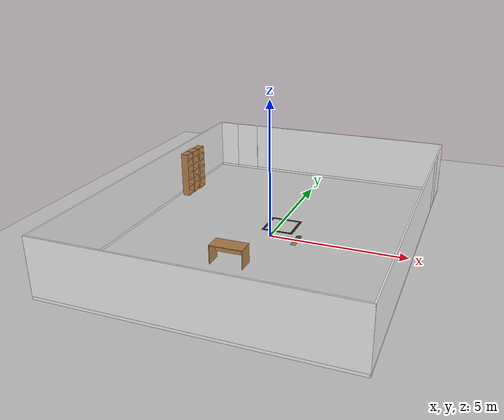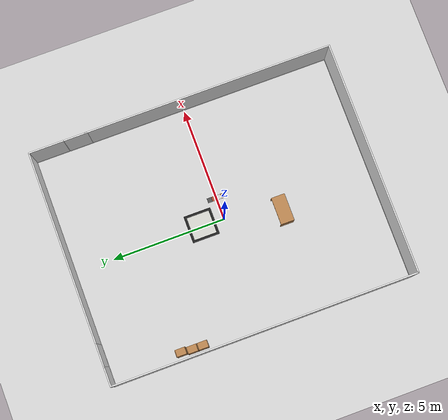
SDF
<sdf version="1.6">
 <world name="megaweb">
  <physics name="default_physics" default="0" type="ode">
   <max_step_size>0.001</max_step_size>
   <real_time_factor>1</real_time_factor>
   <real_time_update_rate>1000</real_time_update_rate>
  </physics>
  <scene><ambient>1 1 1 1</ambient><background>0.7 0.7 0.7 1</background><shadows>0</shadows></scene>
  <model name="ground_plane">
   <static>1</static>
   <link name="link">
    <collision name="collision">
     <geometry><plane><normal>0 0 1</normal><size>100 100</size></plane></geometry>
     <surface><friction><ode><mu>100</mu><mu2>50</mu2></ode></friction></surface>
    </collision>
    <visual name="visual">
     <cast_shadows>0</cast_shadows>
     <geometry><plane><normal>0 0 1</normal><size>100 100</size></plane></geometry>
     <material>
      <script><uri>file://media/materials/scripts/gazebo.material</uri><name>Gazebo/Grey</name></script>
     </material>
    </visual>
   </link>
  </model>
  <light name="floorlight1" type="spot">
   <pose>-3 -3 4 0 -0 0</pose>
   <diffuse>0.8 0.8 0.8 1</diffuse>
   <specular>0.2 0.2 0.2 1</specular>
   <attenuation>
    <range>10</range>
    <constant>0.9</constant>
    <linear>0.2</linear>
    <quadratic>0.001</quadratic>
   </attenuation>
   <spot><inner_angle>0.1</inner_angle><outer_angle>3.14</outer_angle><falloff>0.01</falloff></spot>
   <direction>0 0 -1</direction>
  </light>
  <light name="floorlight2" type="spot">
   <pose>-6 -3 4 0 -0 0</pose>
   <diffuse>0.8 0.8 0.8 1</diffuse>
   <specular>0.2 0.2 0.2 1</specular>
   <attenuation>
    <range>10</range>
    <constant>0.9</constant>
    <linear>0.2</linear>
    <quadratic>0.001</quadratic>
   </attenuation>
   <spot><inner_angle>0.1</inner_angle><outer_angle>3.14</outer_angle><falloff>0.01</falloff></spot>
   <direction>0 0 -1</direction>
  </light>
  <light name="floorlight3" type="spot">
   <pose>-3 -6 4 0 -0 0</pose>
   <diffuse>0.8 0.8 0.8 1</diffuse>
   <specular>0.2 0.2 0.2 1</specular>
   <attenuation>
    <range>10</range>
    <constant>0.9</constant>
    <linear>0.2</linear>
    <quadratic>0.001</quadratic>
   </attenuation>
   <spot><inner_angle>0.1</inner_angle><outer_angle>3.14</outer_angle><falloff>0.01</falloff></spot>
   <direction>0 0 -1</direction>
  </light>
  <light name="floorlight4" type="spot">
   <pose>-6 -6 4 0 -0 0</pose>
   <diffuse>0.8 0.8 0.8 1</diffuse>
   <specular>0.2 0.2 0.2 1</specular>
   <attenuation>
    <range>10</range>
    <constant>0.9</constant>
    <linear>0.2</linear>
    <quadratic>0.001</quadratic>
   </attenuation>
   <spot><inner_angle>0.1</inner_angle><outer_angle>3.14</outer_angle><falloff>0.01</falloff></spot>
   <direction>0 0 -1</direction>
  </light>
  <gravity>0 0 -9.8</gravity>
  <magnetic_field>6e-06 2.3e-05 -4.2e-05</magnetic_field>
  <atmosphere type="adiabatic"/>
  <spherical_coordinates>
   <surface_model>EARTH_WGS84</surface_model>
   <latitude_deg>0</latitude_deg>
   <longitude_deg>0</longitude_deg>
   <elevation>0</elevation>
   <heading_deg>0</heading_deg>
  </spherical_coordinates>
  <model name="full_outside_wall">
   <link name="link">
    <inertial>
     <mass>50</mass>
     <inertia><ixx>1</ixx><ixy>0</ixy><ixz>0</ixz><iyy>1</iyy><iyz>0</iyz><izz>1</izz></inertia>
    </inertial>
    <visual name="x00_13y00_bottom_frame">
     <pose>5.0375 -0.0275 0.05 0 -0 0</pose>
     <geometry><box><size>10.185 0.055 0.1</size></box></geometry>
     <material>
      <script><uri>model://base_materials/color/scripts</uri><name>hsr_color/white</name></script>
     </material>
    </visual>
    <collision name="x00_13y00_collision_bottom_frame">
     <pose>5.0375 -0.0275 0.05 0 -0 0</pose>
     <geometry><box><size>10.185 0.055 0.1</size></box></geometry>
    </collision>
    <visual name="wall_x00_13y00">
     <pose>5.0375 -0.0275 1.095 0 -0 0</pose>
     <geometry><box><size>10.185 0.055 1.99</size></box></geometry>
     <material>
      <script>
       <uri>model://base_materials/wall/scripts</uri>
       <uri>model://base_materials/wall/textures</uri>
       <name>wall/white_noise</name>
      </script>
     </material>
    </visual>
    <collision name="wall_x00_13y00">
     <pose>5.0375 -0.002 1.095 0 -0 0</pose>
     <geometry><box><size>10.08 0.055 1.99</size></box></geometry>
    </collision>
    <visual name="x00y00_15_bottom_frame">
     <pose>-0.0275 6.59 0.05 0 -0 0</pose>
     <geometry><box><size>0.055 13.29 0.1</size></box></geometry>
     <material>
      <script><uri>model://base_materials/color/scripts</uri><name>hsr_color/white</name></script>
     </material>
    </visual>
    <collision name="x00y00_15_collision_bottom_frame">
     <pose>-0.0275 6.59 0.05 0 -0 0</pose>
     <geometry><box><size>0.055 13.29 0.1</size></box></geometry>
    </collision>
    <visual name="wall_x00y00_15">
     <pose>-0.0275 6.59 1.095 0 -0 0</pose>
     <geometry><box><size>0.055 13.29 1.99</size></box></geometry>
     <material>
      <script>
       <uri>model://base_materials/wall/scripts</uri>
       <uri>model://base_materials/wall/textures</uri>
       <name>wall/white_noise</name>
      </script>
     </material>
    </visual>
    <collision name="wall_x00y00_x00y15">
     <pose>-0.002 6.59 1.095 0 -0 0</pose>
     <geometry><box><size>0.002 13.29 1.99</size></box></geometry>
    </collision>
    <visual name="x13y00_12_bottom_frame">
     <pose>10.1025 5.3725 0.05 0 -0 0</pose>
     <geometry><box><size>0.055 10.855 0.1</size></box></geometry>
     <material>
      <script><uri>model://base_materials/color/scripts</uri><name>hsr_color/white</name></script>
     </material>
    </visual>
    <collision name="x13y00_12_collision_bottom_frame">
     <pose>10.1025 5.3725 0.05 0 -0 0</pose>
     <geometry><box><size>0.055 10.855 0.1</size></box></geometry>
    </collision>
    <visual name="wall_x13y00_12">
     <pose>10.1025 5.3725 1.095 0 -0 0</pose>
     <geometry><box><size>0.055 10.855 1.99</size></box></geometry>
     <material>
      <script>
       <uri>model://base_materials/wall/scripts</uri>
       <uri>model://base_materials/wall/textures</uri>
       <name>wall/white_noise</name>
      </script>
     </material>
    </visual>
    <collision name="wall_x13y00_12">
     <pose>10.1025 5.3725 1.095 0 -0 0</pose>
     <geometry><box><size>0.055 10.855 1.99</size></box></geometry>
    </collision>
    <visual name="x13y14_16_bottom_frame">
     <pose>10.1025 12.4675 0.05 0 -0 0</pose>
     <geometry><box><size>0.055 1.535 0.1</size></box></geometry>
     <material>
      <script><uri>model://base_materials/color/scripts</uri><name>hsr_color/white</name></script>
     </material>
    </visual>
    <collision name="x13y14_16_collision_bottom_frame">
     <pose>10.1025 12.4675 0.05 0 -0 0</pose>
     <geometry><box><size>0.055 1.535 0.1</size></box></geometry>
    </collision>
    <visual name="wall_x13y14_x13y16">
     <pose>10.1025 12.4675 1.095 0 -0 0</pose>
     <geometry><box><size>0.055 1.535 1.99</size></box></geometry>
     <material>
      <script>
       <uri>model://base_materials/wall/scripts</uri>
       <uri>model://base_materials/wall/textures</uri>
       <name>wall/white_noise</name>
      </script>
     </material>
    </visual>
    <collision name="wall_x13y14_x13y16">
     <pose>10.1025 12.4675 1.095 0 -0 0</pose>
     <geometry><box><size>0.055 1.535 1.99</size></box></geometry>
    </collision>
    <visual name="x00_01y16_bottom_frame">
     <pose>0.4225 13.2075 0.05 0 -0 0</pose>
     <geometry><box><size>0.955 0.055 0.1</size></box></geometry>
     <material>
      <script><uri>model://base_materials/color/scripts</uri><name>hsr_color/white</name></script>
     </material>
    </visual>
    <collision name="x00_01y16_collision_bottom_frame">
     <pose>0.4225 13.2075 0.05 0 -0 0</pose>
     <geometry><box><size>0.955 0.055 0.1</size></box></geometry>
    </collision>
    <visual name="wall_x00_01y16">
     <pose>0.4225 13.2075 1.095 0 -0 0</pose>
     <geometry><box><size>0.955 0.055 1.99</size></box></geometry>
     <material>
      <script>
       <uri>model://base_materials/wall/scripts</uri>
       <uri>model://base_materials/wall/textures</uri>
       <name>wall/white_noise</name>
      </script>
     </material>
    </visual>
    <collision name="wall_x00_x01y16">
     <pose>0.4225 13.2075 1.095 0 -0 0</pose>
     <geometry><box><size>0.955 0.055 1.99</size></box></geometry>
    </collision>
    <visual name="x03_13y16_bottom_frame">
     <pose>5.965 13.2075 0.05 0 -0 0</pose>
     <geometry><box><size>8.33 0.05 0.1</size></box></geometry>
     <material>
      <script><uri>model://base_materials/color/scripts</uri><name>hsr_color/white</name></script>
     </material>
    </visual>
    <collision name="x03_13y16_collision_bottom_frame">
     <pose>5.965 13.2075 0.05 0 -0 0</pose>
     <geometry><box><size>8.33 0.05 0.1</size></box></geometry>
    </collision>
    <visual name="wall_x03_13y16">
     <pose>5.965 13.2075 1.095 0 -0 0</pose>
     <geometry><box><size>8.33 0.055 1.99</size></box></geometry>
     <material>
      <script>
       <uri>model://base_materials/wall/scripts</uri>
       <uri>model://base_materials/wall/textures</uri>
       <name>wall/white_noise</name>
      </script>
     </material>
    </visual>
    <collision name="wall_x03_13y16">
     <pose>5.965 13.2075 1.095 0 -0 0</pose>
     <geometry><box><size>8.33 0.055 1.99</size></box></geometry>
    </collision>
    <velocity_decay><linear>0</linear><angular>0</angular></velocity_decay>
   </link>
   <static>1</static>
   <pose>-5 -6.5 0 0 -0 0</pose>
  </model>
  <model name="full_wall_55_900_2090">
   <link name="link">
    <inertial>
     <mass>50</mass>
     <inertia><ixx>1</ixx><ixy>0</ixy><ixz>0</ixz><iyy>1</iyy><iyz>0</iyz><izz>1</izz></inertia>
    </inertial>
    <visual name="bottom_frame">
     <pose>0 0 0.05 0 -0 0</pose>
     <geometry><box><size>0.055 1.04 0.1</size></box></geometry>
     <material>
      <script><uri>model://base_materials/color/scripts</uri><name>hsr_color/white</name></script>
     </material>
    </visual>
    <collision name="collision_bottom_frame">
     <pose>0 0 0.05 0 -0 0</pose>
     <geometry><box><size>0.055 1.04 0.1</size></box></geometry>
    </collision>
    <visual name="wall">
     <pose>0 0 1.095 0 -0 0</pose>
     <geometry><box><size>0.055 1.04 1.99</size></box></geometry>
     <material>
      <script>
       <uri>model://base_materials/wall/scripts</uri>
       <uri>model://base_materials/wall/textures</uri>
       <name>wall/white_noise</name>
      </script>
     </material>
    </visual>
    <collision name="collision_wall">
     <pose>0 0 1.095 0 -0 0</pose>
     <geometry><box><size>0.055 1.04 1.99</size></box></geometry>
    </collision>
    <velocity_decay><linear>0</linear><angular>0</angular></velocity_decay>
   </link>
   <static>1</static>
   <pose>5.1 4.67156 0 0 -0 0</pose>
  </model>
  <model name="full_wall_55_900_2090_0">
   <link name="link">
    <inertial>
     <mass>50</mass>
     <inertia><ixx>1</ixx><ixy>0</ixy><ixz>0</ixz><iyy>1</iyy><iyz>0</iyz><izz>1</izz></inertia>
    </inertial>
    <visual name="bottom_frame">
     <pose>0 0 0.05 0 -0 0</pose>
     <geometry><box><size>0.055 1.04 0.1</size></box></geometry>
     <material>
      <script><uri>model://base_materials/color/scripts</uri><name>hsr_color/white</name></script>
     </material>
    </visual>
    <collision name="collision_bottom_frame">
     <pose>0 0 0.05 0 -0 0</pose>
     <geometry><box><size>0.055 1.04 0.1</size></box></geometry>
    </collision>
    <visual name="wall">
     <pose>0 0 1.095 0 -0 0</pose>
     <geometry><box><size>0.055 1.04 1.99</size></box></geometry>
     <material>
      <script>
       <uri>model://base_materials/wall/scripts</uri>
       <uri>model://base_materials/wall/textures</uri>
       <name>wall/white_noise</name>
      </script>
     </material>
    </visual>
    <collision name="collision_wall">
     <pose>0 0 1.095 0 -0 0</pose>
     <geometry><box><size>0.055 1.04 1.99</size></box></geometry>
    </collision>
    <velocity_decay><linear>0</linear><angular>0</angular></velocity_decay>
   </link>
   <static>1</static>
   <pose>-3.72484 6.70714 0 0 -0 1.57</pose>
  </model>
  <model name="high_shelf">
   <link name="link">
    <inertial>
     <mass>5</mass>
     <inertia><ixx>1</ixx><ixy>0</ixy><ixz>0</ixz><iyy>1</iyy><iyz>0</iyz><izz>1</izz></inertia>
    </inertial>
    <visual name="left_board">
     <pose>-0.1475 0.009 0.898 0 -0 0</pose>
     <geometry><box><size>0.295 0.018 1.796</size></box></geometry>
     <material>
      <script>
       <uri>model://base_materials/wood/scripts</uri>
       <uri>model://base_materials/wood/textures</uri>
       <name>base_materials/light_wood</name>
      </script>
     </material>
    </visual>
    <collision name="collision_left_board">
     <pose>-0.1475 0.009 0.898 0 -0 0</pose>
     <geometry><box><size>0.295 0.018 1.796</size></box></geometry>
    </collision>
    <visual name="right_board">
     <pose>-0.1475 0.441 0.898 0 -0 0</pose>
     <geometry><box><size>0.295 0.018 1.796</size></box></geometry>
     <material>
      <script>
       <uri>model://base_materials/wood/scripts</uri>
       <uri>model://base_materials/wood/textures</uri>
       <name>base_materials/light_wood</name>
      </script>
     </material>
    </visual>
    <collision name="collision_right_board">
     <pose>-0.1475 0.441 0.898 0 -0 0</pose>
     <geometry><box><size>0.295 0.018 1.796</size></box></geometry>
    </collision>
    <visual name="top_board">
     <pose>-0.1475 0.225 1.7825 0 -0 0</pose>
     <geometry><box><size>0.295 0.414 0.035</size></box></geometry>
     <material>
      <script>
       <uri>model://base_materials/wood/scripts</uri>
       <uri>model://base_materials/wood/textures</uri>
       <name>base_materials/light_wood</name>
      </script>
     </material>
    </visual>
    <collision name="collision_top_board">
     <pose>-0.1475 0.225 1.7825 0 -0 0</pose>
     <geometry><box><size>0.295 0.414 0.035</size></box></geometry>
    </collision>
    <visual name="1st_shelf">
     <pose>-0.162 0.225 1.51 0 -0 0</pose>
     <geometry><box><size>0.266 0.414 0.018</size></box></geometry>
     <material>
      <script>
       <uri>model://base_materials/wood/scripts</uri>
       <uri>model://base_materials/wood/textures</uri>
       <name>base_materials/light_wood</name>
      </script>
     </material>
    </visual>
    <collision name="collision_1st_shelf">
     <pose>-0.162 0.225 1.51 0 -0 0</pose>
     <geometry><box><size>0.266 0.414 0.018</size></box></geometry>
    </collision>
    <visual name="2nd_shelf">
     <pose>-0.162 0.225 1.22 0 -0 0</pose>
     <geometry><box><size>0.266 0.414 0.018</size></box></geometry>
     <material>
      <script>
       <uri>model://base_materials/wood/scripts</uri>
       <uri>model://base_materials/wood/textures</uri>
       <name>base_materials/light_wood</name>
      </script>
     </material>
    </visual>
    <collision name="collision_2nd_shelf">
     <pose>-0.162 0.225 1.22 0 -0 0</pose>
     <geometry><box><size>0.266 0.414 0.018</size></box></geometry>
    </collision>
    <visual name="3rd_shelf">
     <pose>-0.162 0.225 0.93 0 -0 0</pose>
     <geometry><box><size>0.266 0.414 0.018</size></box></geometry>
     <material>
      <script>
       <uri>model://base_materials/wood/scripts</uri>
       <uri>model://base_materials/wood/textures</uri>
       <name>base_materials/light_wood</name>
      </script>
     </material>
    </visual>
    <collision name="collision_3rd_shelf">
     <pose>-0.162 0.225 0.93 0 -0 0</pose>
     <geometry><box><size>0.266 0.414 0.018</size></box></geometry>
    </collision>
    <visual name="4th_shelf">
     <pose>-0.162 0.225 0.65 0 -0 0</pose>
     <geometry><box><size>0.266 0.414 0.018</size></box></geometry>
     <material>
      <script>
       <uri>model://base_materials/wood/scripts</uri>
       <uri>model://base_materials/wood/textures</uri>
       <name>base_materials/light_wood</name>
      </script>
     </material>
    </visual>
    <collision name="collision_4th_shelf">
     <pose>-0.162 0.225 0.65 0 -0 0</pose>
     <geometry><box><size>0.266 0.414 0.018</size></box></geometry>
    </collision>
    <visual name="5th_shelf">
     <pose>-0.162 0.225 0.36 0 -0 0</pose>
     <geometry><box><size>0.266 0.414 0.018</size></box></geometry>
     <material>
      <script>
       <uri>model://base_materials/wood/scripts</uri>
       <uri>model://base_materials/wood/textures</uri>
       <name>base_materials/light_wood</name>
      </script>
     </material>
    </visual>
    <collision name="collision_5th_shelf">
     <pose>-0.162 0.225 0.36 0 -0 0</pose>
     <geometry><box><size>0.266 0.414 0.018</size></box></geometry>
    </collision>
    <visual name="bottom_board">
     <pose>-0.1475 0.225 0.035 0 -0 0</pose>
     <geometry><box><size>0.295 0.414 0.07</size></box></geometry>
     <material>
      <script>
       <uri>model://base_materials/wood/scripts</uri>
       <uri>model://base_materials/wood/textures</uri>
       <name>base_materials/light_wood</name>
      </script>
     </material>
    </visual>
    <collision name="collision_bottom_board">
     <pose>-0.1475 0.225 0.035 0 -0 0</pose>
     <geometry><box><size>0.295 0.414 0.07</size></box></geometry>
    </collision>
    <visual name="back_board">
     <pose>-0.286 0.225 0.898 0 -0 0</pose>
     <geometry><box><size>0.018 0.414 1.796</size></box></geometry>
     <material>
      <script>
       <uri>model://base_materials/wood/scripts</uri>
       <uri>model://base_materials/wood/textures</uri>
       <name>base_materials/light_wood</name>
      </script>
     </material>
    </visual>
    <collision name="collision_back_board">
     <pose>-0.286 0.225 0.898 0 -0 0</pose>
     <geometry><box><size>0.018 0.414 1.796</size></box></geometry>
    </collision>
    <velocity_decay><linear>0</linear><angular>0</angular></velocity_decay>
   </link>
   <static>1</static>
   <pose>-4.58727 2.46216 0 0 -0 0</pose>
  </model>
  <model name="high_shelf_0">
   <link name="link">
    <inertial>
     <mass>5</mass>
     <inertia><ixx>1</ixx><ixy>0</ixy><ixz>0</ixz><iyy>1</iyy><iyz>0</iyz><izz>1</izz></inertia>
    </inertial>
    <visual name="left_board">
     <pose>-0.1475 0.009 0.898 0 -0 0</pose>
     <geometry><box><size>0.295 0.018 1.796</size></box></geometry>
     <material>
      <script>
       <uri>model://base_materials/wood/scripts</uri>
       <uri>model://base_materials/wood/textures</uri>
       <name>base_materials/light_wood</name>
      </script>
     </material>
    </visual>
    <collision name="collision_left_board">
     <pose>-0.1475 0.009 0.898 0 -0 0</pose>
     <geometry><box><size>0.295 0.018 1.796</size></box></geometry>
    </collision>
    <visual name="right_board">
     <pose>-0.1475 0.441 0.898 0 -0 0</pose>
     <geometry><box><size>0.295 0.018 1.796</size></box></geometry>
     <material>
      <script>
       <uri>model://base_materials/wood/scripts</uri>
       <uri>model://base_materials/wood/textures</uri>
       <name>base_materials/light_wood</name>
      </script>
     </material>
    </visual>
    <collision name="collision_right_board">
     <pose>-0.1475 0.441 0.898 0 -0 0</pose>
     <geometry><box><size>0.295 0.018 1.796</size></box></geometry>
    </collision>
    <visual name="top_board">
     <pose>-0.1475 0.225 1.7825 0 -0 0</pose>
     <geometry><box><size>0.295 0.414 0.035</size></box></geometry>
     <material>
      <script>
       <uri>model://base_materials/wood/scripts</uri>
       <uri>model://base_materials/wood/textures</uri>
       <name>base_materials/light_wood</name>
      </script>
     </material>
    </visual>
    <collision name="collision_top_board">
     <pose>-0.1475 0.225 1.7825 0 -0 0</pose>
     <geometry><box><size>0.295 0.414 0.035</size></box></geometry>
    </collision>
    <visual name="1st_shelf">
     <pose>-0.162 0.225 1.51 0 -0 0</pose>
     <geometry><box><size>0.266 0.414 0.018</size></box></geometry>
     <material>
      <script>
       <uri>model://base_materials/wood/scripts</uri>
       <uri>model://base_materials/wood/textures</uri>
       <name>base_materials/light_wood</name>
      </script>
     </material>
    </visual>
    <collision name="collision_1st_shelf">
     <pose>-0.162 0.225 1.51 0 -0 0</pose>
     <geometry><box><size>0.266 0.414 0.018</size></box></geometry>
    </collision>
    <visual name="2nd_shelf">
     <pose>-0.162 0.225 1.22 0 -0 0</pose>
     <geometry><box><size>0.266 0.414 0.018</size></box></geometry>
     <material>
      <script>
       <uri>model://base_materials/wood/scripts</uri>
       <uri>model://base_materials/wood/textures</uri>
       <name>base_materials/light_wood</name>
      </script>
     </material>
    </visual>
    <collision name="collision_2nd_shelf">
     <pose>-0.162 0.225 1.22 0 -0 0</pose>
     <geometry><box><size>0.266 0.414 0.018</size></box></geometry>
    </collision>
    <visual name="3rd_shelf">
     <pose>-0.162 0.225 0.93 0 -0 0</pose>
     <geometry><box><size>0.266 0.414 0.018</size></box></geometry>
     <material>
      <script>
       <uri>model://base_materials/wood/scripts</uri>
       <uri>model://base_materials/wood/textures</uri>
       <name>base_materials/light_wood</name>
      </script>
     </material>
    </visual>
    <collision name="collision_3rd_shelf">
     <pose>-0.162 0.225 0.93 0 -0 0</pose>
     <geometry><box><size>0.266 0.414 0.018</size></box></geometry>
    </collision>
    <visual name="4th_shelf">
     <pose>-0.162 0.225 0.65 0 -0 0</pose>
     <geometry><box><size>0.266 0.414 0.018</size></box></geometry>
     <material>
      <script>
       <uri>model://base_materials/wood/scripts</uri>
       <uri>model://base_materials/wood/textures</uri>
       <name>base_materials/light_wood</name>
      </script>
     </material>
    </visual>
    <collision name="collision_4th_shelf">
     <pose>-0.162 0.225 0.65 0 -0 0</pose>
     <geometry><box><size>0.266 0.414 0.018</size></box></geometry>
    </collision>
    <visual name="5th_shelf">
     <pose>-0.162 0.225 0.36 0 -0 0</pose>
     <geometry><box><size>0.266 0.414 0.018</size></box></geometry>
     <material>
      <script>
       <uri>model://base_materials/wood/scripts</uri>
       <uri>model://base_materials/wood/textures</uri>
       <name>base_materials/light_wood</name>
      </script>
     </material>
    </visual>
    <collision name="collision_5th_shelf">
     <pose>-0.162 0.225 0.36 0 -0 0</pose>
     <geometry><box><size>0.266 0.414 0.018</size></box></geometry>
    </collision>
    <visual name="bottom_board">
     <pose>-0.1475 0.225 0.035 0 -0 0</pose>
     <geometry><box><size>0.295 0.414 0.07</size></box></geometry>
     <material>
      <script>
       <uri>model://base_materials/wood/scripts</uri>
       <uri>model://base_materials/wood/textures</uri>
       <name>base_materials/light_wood</name>
      </script>
     </material>
    </visual>
    <collision name="collision_bottom_board">
     <pose>-0.1475 0.225 0.035 0 -0 0</pose>
     <geometry><box><size>0.295 0.414 0.07</size></box></geometry>
    </collision>
    <visual name="back_board">
     <pose>-0.286 0.225 0.898 0 -0 0</pose>
     <geometry><box><size>0.018 0.414 1.796</size></box></geometry>
     <material>
      <script>
       <uri>model://base_materials/wood/scripts</uri>
       <uri>model://base_materials/wood/textures</uri>
       <name>base_materials/light_wood</name>
      </script>
     </material>
    </visual>
    <collision name="collision_back_board">
     <pose>-0.286 0.225 0.898 0 -0 0</pose>
     <geometry><box><size>0.018 0.414 1.796</size></box></geometry>
    </collision>
    <velocity_decay><linear>0</linear><angular>0</angular></velocity_decay>
   </link>
   <static>1</static>
   <pose>-4.58678 2.92064 0 0 -0 0</pose>
  </model>
  <model name="high_shelf_1">
   <link name="link">
    <inertial>
     <mass>5</mass>
     <inertia><ixx>1</ixx><ixy>0</ixy><ixz>0</ixz><iyy>1</iyy><iyz>0</iyz><izz>1</izz></inertia>
    </inertial>
    <visual name="left_board">
     <pose>-0.1475 0.009 0.898 0 -0 0</pose>
     <geometry><box><size>0.295 0.018 1.796</size></box></geometry>
     <material>
      <script>
       <uri>model://base_materials/wood/scripts</uri>
       <uri>model://base_materials/wood/textures</uri>
       <name>base_materials/light_wood</name>
      </script>
     </material>
    </visual>
    <collision name="collision_left_board">
     <pose>-0.1475 0.009 0.898 0 -0 0</pose>
     <geometry><box><size>0.295 0.018 1.796</size></box></geometry>
    </collision>
    <visual name="right_board">
     <pose>-0.1475 0.441 0.898 0 -0 0</pose>
     <geometry><box><size>0.295 0.018 1.796</size></box></geometry>
     <material>
      <script>
       <uri>model://base_materials/wood/scripts</uri>
       <uri>model://base_materials/wood/textures</uri>
       <name>base_materials/light_wood</name>
      </script>
     </material>
    </visual>
    <collision name="collision_right_board">
     <pose>-0.1475 0.441 0.898 0 -0 0</pose>
     <geometry><box><size>0.295 0.018 1.796</size></box></geometry>
    </collision>
    <visual name="top_board">
     <pose>-0.1475 0.225 1.7825 0 -0 0</pose>
     <geometry><box><size>0.295 0.414 0.035</size></box></geometry>
     <material>
      <script>
       <uri>model://base_materials/wood/scripts</uri>
       <uri>model://base_materials/wood/textures</uri>
       <name>base_materials/light_wood</name>
      </script>
     </material>
    </visual>
    <collision name="collision_top_board">
     <pose>-0.1475 0.225 1.7825 0 -0 0</pose>
     <geometry><box><size>0.295 0.414 0.035</size></box></geometry>
    </collision>
    <visual name="1st_shelf">
     <pose>-0.162 0.225 1.51 0 -0 0</pose>
     <geometry><box><size>0.266 0.414 0.018</size></box></geometry>
     <material>
      <script>
       <uri>model://base_materials/wood/scripts</uri>
       <uri>model://base_materials/wood/textures</uri>
       <name>base_materials/light_wood</name>
      </script>
     </material>
    </visual>
    <collision name="collision_1st_shelf">
     <pose>-0.162 0.225 1.51 0 -0 0</pose>
     <geometry><box><size>0.266 0.414 0.018</size></box></geometry>
    </collision>
    <visual name="2nd_shelf">
     <pose>-0.162 0.225 1.22 0 -0 0</pose>
     <geometry><box><size>0.266 0.414 0.018</size></box></geometry>
     <material>
      <script>
       <uri>model://base_materials/wood/scripts</uri>
       <uri>model://base_materials/wood/textures</uri>
       <name>base_materials/light_wood</name>
      </script>
     </material>
    </visual>
    <collision name="collision_2nd_shelf">
     <pose>-0.162 0.225 1.22 0 -0 0</pose>
     <geometry><box><size>0.266 0.414 0.018</size></box></geometry>
    </collision>
    <visual name="3rd_shelf">
     <pose>-0.162 0.225 0.93 0 -0 0</pose>
     <geometry><box><size>0.266 0.414 0.018</size></box></geometry>
     <material>
      <script>
       <uri>model://base_materials/wood/scripts</uri>
       <uri>model://base_materials/wood/textures</uri>
       <name>base_materials/light_wood</name>
      </script>
     </material>
    </visual>
    <collision name="collision_3rd_shelf">
     <pose>-0.162 0.225 0.93 0 -0 0</pose>
     <geometry><box><size>0.266 0.414 0.018</size></box></geometry>
    </collision>
    <visual name="4th_shelf">
     <pose>-0.162 0.225 0.65 0 -0 0</pose>
     <geometry><box><size>0.266 0.414 0.018</size></box></geometry>
     <material>
      <script>
       <uri>model://base_materials/wood/scripts</uri>
       <uri>model://base_materials/wood/textures</uri>
       <name>base_materials/light_wood</name>
      </script>
     </material>
    </visual>
    <collision name="collision_4th_shelf">
     <pose>-0.162 0.225 0.65 0 -0 0</pose>
     <geometry><box><size>0.266 0.414 0.018</size></box></geometry>
    </collision>
    <visual name="5th_shelf">
     <pose>-0.162 0.225 0.36 0 -0 0</pose>
     <geometry><box><size>0.266 0.414 0.018</size></box></geometry>
     <material>
      <script>
       <uri>model://base_materials/wood/scripts</uri>
       <uri>model://base_materials/wood/textures</uri>
       <name>base_materials/light_wood</name>
      </script>
     </material>
    </visual>
    <collision name="collision_5th_shelf">
     <pose>-0.162 0.225 0.36 0 -0 0</pose>
     <geometry><box><size>0.266 0.414 0.018</size></box></geometry>
    </collision>
    <visual name="bottom_board">
     <pose>-0.1475 0.225 0.035 0 -0 0</pose>
     <geometry><box><size>0.295 0.414 0.07</size></box></geometry>
     <material>
      <script>
       <uri>model://base_materials/wood/scripts</uri>
       <uri>model://base_materials/wood/textures</uri>
       <name>base_materials/light_wood</name>
      </script>
     </material>
    </visual>
    <collision name="collision_bottom_board">
     <pose>-0.1475 0.225 0.035 0 -0 0</pose>
     <geometry><box><size>0.295 0.414 0.07</size></box></geometry>
    </collision>
    <visual name="back_board">
     <pose>-0.286 0.225 0.898 0 -0 0</pose>
     <geometry><box><size>0.018 0.414 1.796</size></box></geometry>
     <material>
      <script>
       <uri>model://base_materials/wood/scripts</uri>
       <uri>model://base_materials/wood/textures</uri>
       <name>base_materials/light_wood</name>
      </script>
     </material>
    </visual>
    <collision name="collision_back_board">
     <pose>-0.286 0.225 0.898 0 -0 0</pose>
     <geometry><box><size>0.018 0.414 1.796</size></box></geometry>
    </collision>
    <velocity_decay><linear>0</linear><angular>0</angular></velocity_decay>
   </link>
   <static>1</static>
   <pose>-4.54334 3.39383 0 0 -0 0</pose>
  </model>
  <model name="office_desk">
   <link name="link">
    <inertial>
     <mass>10</mass>
     <inertia><ixx>1</ixx><ixy>0</ixy><ixz>0</ixz><iyy>1</iyy><iyz>0</iyz><izz>1</izz></inertia>
    </inertial>
    <visual name="top_board">
     <pose>-0.3 0.6 0.69 0 -0 0</pose>
     <geometry><box><size>0.6 1.2 0.02</size></box></geometry>
     <material>
      <script>
       <uri>model://base_materials/wood/scripts/wood.material</uri>
       <name>base_materials/dark_wood</name>
      </script>
     </material>
    </visual>
    <collision name="collision_top_board">
     <pose>-0.3 0.6 0.69 0 -0 0</pose>
     <geometry><box><size>0.6 1.2 0.02</size></box></geometry>
    </collision>
    <visual name="left_board">
     <pose>-0.3 0.01 0.34 0 -0 0</pose>
     <geometry><box><size>0.6 0.02 0.68</size></box></geometry>
     <material>
      <script>
       <uri>model://base_materials/wood/scripts/wood.material</uri>
       <name>base_materials/dark_wood</name>
      </script>
     </material>
    </visual>
    <collision name="collision_left_board">
     <pose>-0.3 0.01 0.34 0 -0 0</pose>
     <geometry><box><size>0.6 0.02 0.68</size></box></geometry>
    </collision>
    <visual name="right_board">
     <pose>-0.3 1.19 0.34 0 -0 0</pose>
     <geometry><box><size>0.6 0.02 0.68</size></box></geometry>
     <material>
      <script>
       <uri>model://base_materials/wood/scripts/wood.material</uri>
       <name>base_materials/dark_wood</name>
      </script>
     </material>
    </visual>
    <collision name="collision_right_board">
     <pose>-0.3 1.19 0.34 0 -0 0</pose>
     <geometry><box><size>0.6 0.02 0.68</size></box></geometry>
    </collision>
    <visual name="center_board">
     <pose>-0.14 0.6 0.49 0 -0 0</pose>
     <geometry><box><size>0.02 1.16 0.4</size></box></geometry>
     <material>
      <script>
       <uri>model://base_materials/wood/scripts/wood.material</uri>
       <name>base_materials/dark_wood</name>
      </script>
     </material>
    </visual>
    <collision name="ollision_center_board">
     <pose>-0.14 0.6 0.49 0 -0 0</pose>
     <geometry><box><size>0.02 1.16 0.4</size></box></geometry>
    </collision>
    <velocity_decay><linear>0</linear><angular>0</angular></velocity_decay>
   </link>
   <static>1</static>
   <pose>0.078404 -2.12286 0 0 -0 1.57</pose>
  </model>
  <model name="class0tag">
   <static>1</static>
   <link name="link">
    <inertial>
     <mass>1</mass>
     <inertia>
      <ixx>0.166667</ixx>
      <ixy>0</ixy>
      <ixz>0</ixz>
      <iyy>0.166667</iyy>
      <iyz>0</iyz>
      <izz>0.166667</izz>
     </inertia>
    </inertial>
    <visual name="visual">
     <geometry><box><size>0.2 0.2 0.01</size></box></geometry>
     <material>
      <script><name>Gazebo/Wood</name><uri>file://media/materials/scripts/gazebo.material</uri></script>
      <ambient>0.3 0.3 0.3 1</ambient>
      <diffuse>0.7 0.7 0.7 1</diffuse>
      <specular>0.01 0.01 0.01 1</specular>
      <emissive>0 0 0 1</emissive>
      <shader type="vertex"><normal_map>__default__</normal_map></shader>
      <lighting>0</lighting>
     </material>
    </visual>
   </link>
   <static>0</static>
   <pose>1 -0.3 0 0 -0 0</pose>
  </model>
  <model name="class1tag">
   <static>1</static>
   <link name="link">
    <inertial>
     <mass>1</mass>
     <inertia>
      <ixx>0.166667</ixx>
      <ixy>0</ixy>
      <ixz>0</ixz>
      <iyy>0.166667</iyy>
      <iyz>0</iyz>
      <izz>0.166667</izz>
     </inertia>
    </inertial>
    <visual name="visual">
     <geometry><box><size>0.2 0.2 0.0001</size></box></geometry>
     <material>
      <script><name>Gazebo/CeilingTiled</name><uri>file://media/materials/scripts/gazebo.material</uri></script>
      <ambient>0.3 0.3 0.3 1</ambient>
      <diffuse>0.7 0.7 0.7 1</diffuse>
      <specular>0.01 0.01 0.01 1</specular>
      <emissive>0 0 0 1</emissive>
      <shader type="vertex"><normal_map>__default__</normal_map></shader>
      <lighting>0</lighting>
     </material>
    </visual>
   </link>
   <static>0</static>
   <pose>1 -0.1 0 0 -0 0</pose>
  </model>
  <model name="class2tag">
   <static>1</static>
   <link name="link">
    <inertial>
     <mass>1</mass>
     <inertia>
      <ixx>0.166667</ixx>
      <ixy>0</ixy>
      <ixz>0</ixz>
      <iyy>0.166667</iyy>
      <iyz>0</iyz>
      <izz>0.166667</izz>
     </inertia>
    </inertial>
    <visual name="visual">
     <geometry><box><size>0.2 0.2 0.0001</size></box></geometry>
     <material>
      <script><name>Gazebo/Bricks</name><uri>file://media/materials/scripts/gazebo.material</uri></script>
      <ambient>0.3 0.3 0.3 1</ambient>
      <diffuse>0.7 0.7 0.7 1</diffuse>
      <specular>0.01 0.01 0.01 1</specular>
      <emissive>0 0 0 1</emissive>
      <shader type="vertex"><normal_map>__default__</normal_map></shader>
      <lighting>0</lighting>
     </material>
    </visual>
   </link>
   <static>0</static>
   <pose>1 0.1 0 0 -0 0</pose>
  </model>
  <model name="class3tag">
   <static>1</static>
   <link name="link">
    <inertial>
     <mass>1</mass>
     <inertia>
      <ixx>0.166667</ixx>
      <ixy>0</ixy>
      <ixz>0</ixz>
      <iyy>0.166667</iyy>
      <iyz>0</iyz>
      <izz>0.166667</izz>
     </inertia>
    </inertial>
    <visual name="visual">
     <geometry><box><size>0.2 0.2 0.0001</size></box></geometry>
     <material>
      <script><name>Gazebo/Road</name><uri>file://media/materials/scripts/gazebo.material</uri></script>
      <ambient>0.3 0.3 0.3 1</ambient>
      <diffuse>0.7 0.7 0.7 1</diffuse>
      <specular>0.01 0.01 0.01 1</specular>
      <emissive>0 0 0 1</emissive>
      <shader type="vertex"><normal_map>__default__</normal_map></shader>
      <lighting>0</lighting>
     </material>
    </visual>
   </link>
   <static>0</static>
   <pose>1 0.3 0 0 -0 0</pose>
  </model>
  <model name="class3tag_clone">
   <link name="link">
    <inertial>
     <mass>1</mass>
     <inertia>
      <ixx>0.166667</ixx>
      <ixy>0</ixy>
      <ixz>0</ixz>
      <iyy>0.166667</iyy>
      <iyz>0</iyz>
      <izz>0.166667</izz>
     </inertia>
    </inertial>
    <visual name="visual">
     <geometry><box><size>1.2 1.2 0.0001</size></box></geometry>
     <material>
      <script><name>Gazebo/Black</name><uri>file://media/materials/scripts/gazebo.material</uri></script>
      <ambient>0.3 0.3 0.3 1</ambient>
      <diffuse>0.7 0.7 0.7 1</diffuse>
      <specular>0.01 0.01 0.01 1</specular>
      <emissive>0 0 0 1</emissive>
      <shader type="vertex"><normal_map>__default__</normal_map></shader>
      <lighting>0</lighting>
     </material>
    </visual>
   </link>
   <static>1</static>
   <pose>0.1 1 1e-06 0 -0 0</pose>
  </model>
  <model name="class1tag_clone">
   <link name="link">
    <inertial>
     <mass>1</mass>
     <inertia>
      <ixx>0.166667</ixx>
      <ixy>0</ixy>
      <ixz>0</ixz>
      <iyy>0.166667</iyy>
      <iyz>0</iyz>
      <izz>0.166667</izz>
     </inertia>
    </inertial>
    <visual name="visual">
     <geometry><box><size>1 1 0.0001</size></box></geometry>
     <material>
      <script><name>Gazebo/CeilingTiled</name><uri>file://media/materials/scripts/gazebo.material</uri></script>
      <ambient>0.3 0.3 0.3 1</ambient>
      <diffuse>0.7 0.7 0.7 1</diffuse>
      <specular>0.01 0.01 0.01 1</specular>
      <emissive>0 0 0 1</emissive>
      <shader type="vertex"><normal_map>__default__</normal_map></shader>
      <lighting>0</lighting>
     </material>
    </visual>
   </link>
   <static>1</static>
   <pose>0.1 1 0.001 0 -0 0</pose>
  </model>
 </world>
</sdf>
